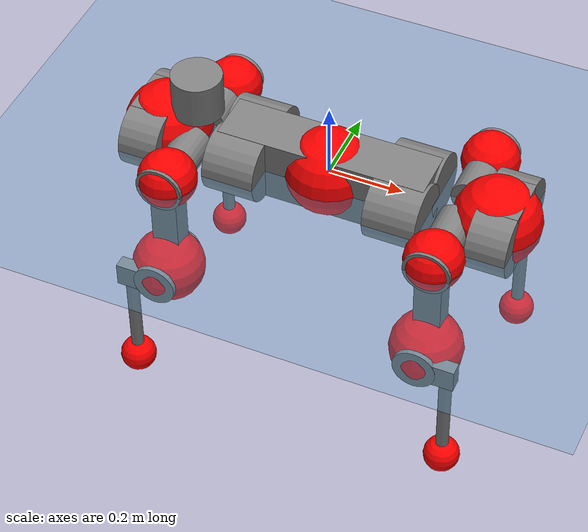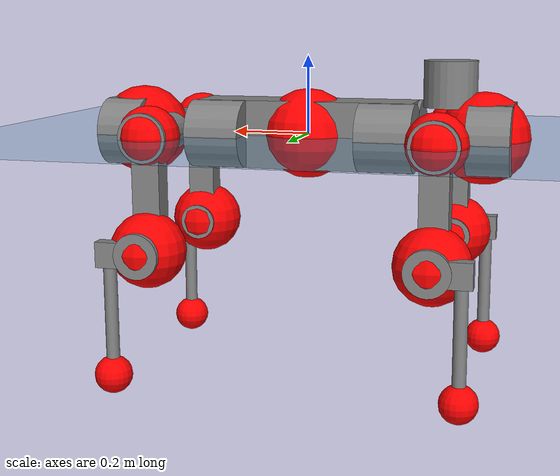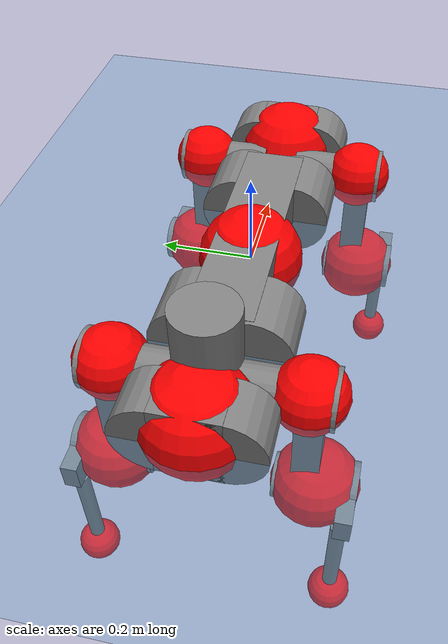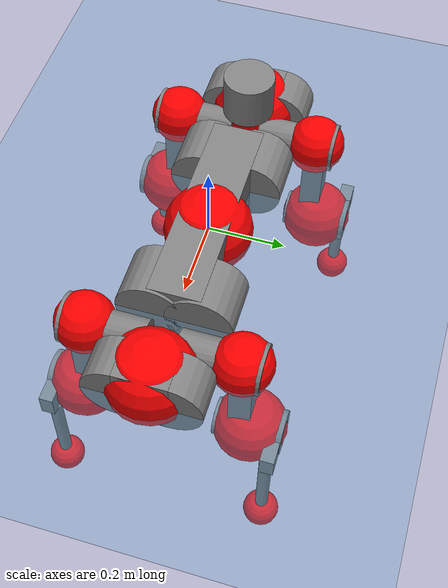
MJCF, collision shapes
<mujoco model="anymal_c">
  <compiler angle="radian" assetdir="assets" balanceinertia="true" inertiafromgeom="false"/>

  <option timestep="0.005" density="1.2" viscosity="2e-05"/>

  <size nkey="1"/>

  <visual>
    <quality shadowsize="8192"/>
    <map shadowclip="0.5"/>
  </visual>

  <default>
    <default class="/">
      <material specular="0" shininess="0.25"/>
      <geom contype="0" conaffinity="0" group="1" solref="-1000 -80"/>
      <site size="0.01 0.005 0.005" group="5"/>
      <general forcelimited="true" forcerange="-80 80" biastype="affine" gainprm="80" biasprm="0 -80 -2"/>
      <default class="anymal_c">
        <joint armature="0.01" damping="0.01" frictionloss="0.1"/>
        <default class="visual">
          <geom type="mesh" group="2"/>
          <default class="visual_zflip"/>
        </default>
        <default class="collision">
          <geom type="cylinder" group="3"/>
          <default class="foot">
            <geom size="0.03 0 0" type="sphere" condim="6" priority="1" friction="0.8 0.02 0.01" solimp="0.015 1 0.03"/>
          </default>
        </default>
      </default>
      <default class="reward_collision_sphere">
        <geom group="5" rgba="1 0 0 1"/>
      </default>
    </default>
  </default>

  <asset>
    <texture type="skybox" colorspace="auto" name="//unnamed_texture_0" builtin="gradient" rgb1="0.95 0.95 0.95" rgb2="0.95 0.95 0.95" width="100" height="600"/>
    <texture type="2d" colorspace="auto" name="texplane" builtin="checker" rgb1="0.345 0.575 0.748" rgb2="0.345 0.575 0.748" markrgb="1 1 1" width="512" height="512"/>
    <texture type="2d" colorspace="linear" name="base" file="base.png"/>
    <texture type="2d" colorspace="linear" name="top_shell" file="top_shell.png"/>
    <texture type="2d" colorspace="linear" name="bottom_shell" file="bottom_shell.png"/>
    <texture type="2d" colorspace="linear" name="remote" file="remote.png"/>
    <texture type="2d" colorspace="linear" name="hatch" file="hatch.png"/>
    <texture type="2d" colorspace="linear" name="handle" file="handle.png"/>
    <texture type="2d" colorspace="linear" name="face" file="face.png"/>
    <texture type="2d" colorspace="linear" name="battery" file="battery.png"/>
    <texture type="2d" colorspace="linear" name="lidar_cage" file="lidar_cage.png"/>
    <texture type="2d" colorspace="linear" name="depth_camera" file="depth_camera.png"/>
    <texture type="2d" colorspace="linear" name="wide_angle_camera" file="wide_angle_camera.png"/>
    <texture type="2d" colorspace="linear" name="lidar" file="lidar.png"/>
    <texture type="2d" colorspace="linear" name="drive" file="drive.png"/>
    <texture type="2d" colorspace="linear" name="hip_l" file="hip_l.png"/>
    <texture type="2d" colorspace="linear" name="shank_l" file="shank_l.png"/>
    <texture type="2d" colorspace="linear" name="foot" file="foot.png"/>
    <texture type="2d" colorspace="linear" name="thigh" file="thigh.png"/>
    <texture type="2d" colorspace="linear" name="shank_r" file="shank_r.png"/>
    <texture type="2d" colorspace="linear" name="hip_r" file="hip_r.png"/>
    <material name="MatPlane" class="/" texture="texplane" texuniform="true" texrepeat="2 2" specular="0.9" shininess="0.5"/>
    <material name="black_plastic" class="/" rgba="0.007 0.007 0.007 1"/>
    <material name="green" class="/" rgba="0.052 0.178 0.033 1"/>
    <material name="red" class="/" rgba="0.178 0.006 0.005 1"/>
    <material name="yellow" class="/" rgba="0.178 0.119 0.006 1"/>
    <material name="lwl" class="/" rgba="0.8 0.8 0.8 1"/>
    <material name="base" class="/" texture="base"/>
    <material name="top_shell" class="/" texture="top_shell"/>
    <material name="bottom_shell" class="/" texture="bottom_shell"/>
    <material name="hip_l" class="/" texture="hip_l"/>
    <material name="thigh" class="/" texture="thigh"/>
    <material name="shank_l" class="/" texture="shank_l"/>
    <material name="foot" class="/" texture="foot"/>
    <material name="hip_r" class="/" texture="hip_r"/>
    <material name="shank" class="/" texture="shank_r"/>
    <material name="hatch" class="/" texture="hatch"/>
    <material name="remote" class="/" texture="remote"/>
    <material name="handle" class="/" texture="handle"/>
    <material name="face" class="/" texture="face"/>
    <material name="depth_camera" class="/" texture="depth_camera"/>
    <material name="wide_angle_camera" class="/" texture="wide_angle_camera"/>
    <material name="battery" class="/" texture="battery"/>
    <material name="lidar_cage" class="/" texture="lidar_cage"/>
    <material name="lidar" class="/" texture="lidar"/>
    <material name="drive" class="/" texture="drive"/>
    <mesh name="base_0" class="/" file="base_0.obj"/>
    <mesh name="base_1" class="/" file="base_1.obj"/>
    <mesh name="base_2" class="/" file="base_2.obj"/>
    <mesh name="base_3" class="/" file="base_3.obj"/>
    <mesh name="base_4" class="/" file="base_4.obj"/>
    <mesh name="base_5" class="/" file="base_5.obj"/>
    <mesh name="top_shell" class="/" file="top_shell.obj"/>
    <mesh name="bottom_shell" class="/" file="bottom_shell.obj"/>
    <mesh name="remote" class="/" file="remote.obj"/>
    <mesh name="handle" class="/" file="handle.obj"/>
    <mesh name="face" class="/" file="face.obj"/>
    <mesh name="wide_angle_camera" class="/" file="wide_angle_camera.obj"/>
    <mesh name="depth_camera" class="/" file="depth_camera.obj"/>
    <mesh name="battery" class="/" file="battery.obj"/>
    <mesh name="lidar_cage" class="/" file="lidar_cage.obj"/>
    <mesh name="lidar" class="/" file="lidar.obj"/>
    <mesh name="drive" class="/" file="drive.obj"/>
    <mesh name="hip_l" class="/" file="hip_l.obj"/>
    <mesh name="thigh" class="/" file="thigh.obj"/>
    <mesh name="shank_l" class="/" file="shank_l.obj"/>
    <mesh name="foot" class="/" file="foot.obj"/>
    <mesh name="hip_r" class="/" file="hip_r.obj"/>
    <mesh name="hatch" class="/" file="hatch.obj"/>
    <mesh name="shank_r" class="/" file="shank_r.obj"/>
  </asset>

  <worldbody>
    <geom name="floor" class="/" size="100 100 0.125" type="plane" group="0" material="MatPlane"/>
    <light name="toplight_shadow" class="/" pos="0 0 5" dir="0.0990148 0.0990148 -0.990148" type="directional" ambient="0.04 0.04 0.04" diffuse="0.55 0.55 0.55" specular="0.12 0.12 0.12"/>
    <light name="toplight_fill" class="/" pos="0 0 5" dir="0.0990148 0.0990148 -0.990148" type="directional" castshadow="false" ambient="0.04 0.04 0.04" diffuse="0.3 0.3 0.3" specular="0.08 0.08 0.08"/>
    <body name="trunk" childclass="anymal_c" pos="0.000221062 0.000527224 0.000953816" quat="1 2.59826e-05 0.00014508 -0.000263113">
      <inertial pos="0.00326919 -0.000919756 0.0493656" quat="0.501973 0.49952 0.499852 0.498649" mass="17.3657" diaginertia="0.679051 0.354965 0.224605"/>
      <joint name="//unnamed_joint_0" type="free" armature="0" damping="0" frictionloss="0"/>
      <geom name="//unnamed_geom_1" class="visual" material="green" mesh="base_0"/>
      <geom name="//unnamed_geom_2" class="visual" material="yellow" mesh="base_1"/>
      <geom name="//unnamed_geom_3" class="visual" material="red" mesh="base_2"/>
      <geom name="//unnamed_geom_4" class="visual" material="black_plastic" mesh="base_3"/>
      <geom name="//unnamed_geom_5" class="visual" material="lwl" mesh="base_4"/>
      <geom name="//unnamed_geom_6" class="visual" material="base" mesh="base_5"/>
      <geom name="trunk_1" class="collision" size="0.280121 0.0676154 0.0869341" type="box"/>
      <geom name="trunk_2" class="collision" size="0.0869341 0.0700303" pos="0.218946 0.0623426 0" quat="0.707107 0 0.707107 0"/>
      <geom name="trunk_3" class="collision" size="0.0869341 0.0700303" pos="-0.218946 0.0623426 0" quat="0.707107 0 0.707107 0"/>
      <geom name="trunk_4" class="collision" size="0.0869341 0.0700303" pos="0.218946 -0.0623426 0" quat="0.707107 0 0.707107 0"/>
      <geom name="trunk_5" class="collision" size="0.0869341 0.0700303" pos="-0.218946 -0.0623426 0" quat="0.707107 0 0.707107 0"/>
      <geom name="//unnamed_geom_12" class="visual" material="top_shell" mesh="top_shell"/>
      <geom name="//unnamed_geom_13" class="visual" material="bottom_shell" mesh="bottom_shell"/>
      <geom name="//unnamed_geom_14" class="visual" material="remote" mesh="remote"/>
      <geom name="//unnamed_geom_15" class="visual" material="handle" mesh="handle"/>
      <geom name="//unnamed_geom_16" class="visual" pos="0.417256 0 0" quat="1 0 0 0" material="face" mesh="face"/>
      <geom name="trunk_6" class="collision" size="0.0531264 0.0676154 0.0869341" pos="0.472622 0 0" type="box"/>
      <geom name="//unnamed_geom_18" class="collision" size="0.0869341 0.0531264" pos="0.472622 0.0623426 0" quat="0.707107 0 0.707107 0"/>
      <geom name="//unnamed_geom_19" class="collision" size="0.0869341 0.0531264" pos="0.472622 -0.0623426 0" quat="0.707107 0 0.707107 0"/>
      <geom name="//unnamed_geom_20" class="visual" pos="0.46472 0 -0.0291695" quat="0.965926 0 0.258819 0" material="depth_camera" mesh="depth_camera"/>
      <geom name="//unnamed_geom_21" class="visual" pos="0.516411 0 0.0149782" material="wide_angle_camera" mesh="wide_angle_camera"/>
      <geom name="//unnamed_geom_22" class="visual_zflip" pos="-0.417256 0 0" quat="0 0 0 1" material="face" mesh="face"/>
      <geom name="trunk_7" class="collision" size="0.0531264 0.0676154 0.0869341" pos="-0.472622 0 0" quat="0 0 0 1" type="box"/>
      <geom name="//unnamed_geom_24" class="collision" size="0.0869341 0.0531264" pos="-0.472622 -0.0623426 0" quat="0 -0.707107 0 0.707107"/>
      <geom name="//unnamed_geom_25" class="collision" size="0.0869341 0.0531264" pos="-0.472622 0.0623426 0" quat="0 -0.707107 0 0.707107"/>
      <geom name="//unnamed_geom_26" class="visual" pos="-0.46472 0 -0.0291695" quat="0 -0.258819 0 0.965926" material="depth_camera" mesh="depth_camera"/>
      <geom name="//unnamed_geom_27" class="visual_zflip" pos="-0.516411 0 0.0149782" quat="0 0 0 1" material="wide_angle_camera" mesh="wide_angle_camera"/>
      <geom name="//unnamed_geom_28" class="visual" material="battery" mesh="battery"/>
      <geom name="//unnamed_geom_29" class="visual" pos="0 0.066573 0.0291122" quat="0.683013 -0.183013 0.183013 0.683013" material="depth_camera" mesh="depth_camera"/>
      <geom name="//unnamed_geom_30" class="visual" pos="0 -0.066573 0.0291122" quat="0.683013 0.183013 0.183013 -0.683013" material="depth_camera" mesh="depth_camera"/>
      <geom name="//unnamed_geom_31" class="visual" pos="-0.36642 0 0.0735401" quat="1 0 0 0" material="lidar_cage" mesh="lidar_cage"/>
      <geom name="trunk_8" class="collision" size="0.0676154 0.0579561" pos="-0.36642 0 0.133573"/>
      <geom name="//unnamed_geom_33" class="visual" pos="-0.36642 -4.55893e-05 0.142278" quat="0.707107 0 0 -0.707107" material="lidar" mesh="lidar"/>
      <geom name="//unnamed_geom_34" class="visual" pos="0.301894 0.0926624 -1.89642e-09" quat="0.258819 0.965926 0 0" material="drive" mesh="drive"/>
      <geom name="//unnamed_geom_35" class="visual" pos="0.301894 -0.0926624 1.89642e-09" quat="0.258819 -0.965926 0 0" material="drive" mesh="drive"/>
      <geom name="//unnamed_geom_36" class="visual" pos="-0.301894 0.0926624 1.89642e-09" quat="0 0 0.965926 -0.258819" material="drive" mesh="drive"/>
      <geom name="//unnamed_geom_37" class="visual" pos="-0.301894 -0.0926624 -1.89642e-09" quat="0 0 -0.965926 -0.258819" material="drive" mesh="drive"/>
      <geom name="//unnamed_geom_38" class="visual" pos="0.116771 0 0.0730398" quat="1 0 0 0" material="hatch" mesh="hatch"/>
      <geom name="//unnamed_geom_39" class="reward_collision_sphere" size="0.115912"/>
      <geom name="//unnamed_geom_40" class="reward_collision_sphere" size="0.115912" pos="0.452992 0 0"/>
      <geom name="//unnamed_geom_41" class="reward_collision_sphere" size="0.115912" pos="-0.452992 0 0"/>
      <site name="imu" pos="0.246137 -0.00175918 0.0501016" size="0.00965935"/>
      <camera name="track" pos="0 -1.78122 0" quat="0.707107 0.707107 0 0" mode="trackcom"/>
      <camera name="ego_camera" pos="0.452992 0 -0.0400218" quat="-0.5 -0.5 0.5 0.5"/>
      <body name="LF_HIP" pos="0.302087 0.0924782 0.000828477" quat="0.259547 0.96573 0.000277726 0.000260011">
        <inertial pos="0.0580348 -0.0132355 -0.0079307" quat="-0.127486 0.709814 -0.134899 0.679495" mass="2.54424" diaginertia="0.00614918 0.00280473 0.00331212"/>
        <joint name="LF_HAA" pos="0 0 0" axis="0.999999 -0.00135055 5.61486e-05" range="-0.696092 0.486933" armature="0.00967779" damping="0.0121257" frictionloss="0.0940833"/>
        <geom name="//unnamed_geom_42" class="visual" pos="0 -0.000111558 1.83233e-05" quat="0.258819 -0.965926 0 0" material="hip_l" mesh="hip_l"/>
        <geom name="//unnamed_geom_43" class="visual" pos="0.0602983 -0.0715754 -0.0421373" quat="0.183013 -0.683013 0.683013 0.183013" material="drive" mesh="drive"/>
        <geom name="//unnamed_geom_44" class="collision" size="0.0482967 0.0676154" pos="0.0602983 -0.0106515 -0.00690877" quat="-0.353553 -0.612372 0.612372 -0.353553"/>
        <body name="LF_THIGH" pos="0.0607255 -0.0652493 -0.0403706" quat="0.183111 -0.682989 0.682998 0.183058">
          <inertial pos="0.0315182 -0.00112036 -0.247617" quat="0.993031 -0.00474797 -0.0805088 0.0859387" mass="2.74524" diaginertia="0.0313616 0.0168891 0.0042029"/>
          <joint name="LF_HFE" pos="0 0 0" axis="0.999999 -0.00163101 0.000292667" range="-3.145 3.17095" armature="0.0100343" damping="0" frictionloss="0.0968372"/>
          <geom name="//unnamed_geom_45" class="visual" pos="0.00230876 3.63806e-06 0" quat="0.707107 0 0 -0.707107" material="thigh" mesh="thigh"/>
          <geom name="//unnamed_geom_46" class="collision" size="0.0627858 0.0386374" pos="0.040266 0 0" quat="0.5 0.5 -0.5 -0.5"/>
          <geom name="//unnamed_geom_47" class="collision" size="0.0362226 0.028978 0.1365" pos="0.0301995 0 -0.141391" quat="0.707107 0 0 -0.707107" type="box"/>
          <geom name="//unnamed_geom_48" class="visual" pos="0.100967 0 -0.285156" quat="1 0 0 0" material="drive" mesh="drive"/>
          <geom name="//unnamed_geom_49" class="collision" size="0.0482967 0.0676154" pos="0.0305015 0 -0.285156" quat="0.707107 0 0.707107 0"/>
          <geom name="//unnamed_geom_50" class="reward_collision_sphere" size="0.0772748" pos="0.0251662 0 0"/>
          <body name="LF_SHANK" pos="0.10289 0.00115229 -0.285356" quat="1 -3.39871e-06 1.49299e-06 1.80747e-05">
            <inertial pos="0.0057685 -0.0536733 -0.0811249" quat="0.992924 -0.116102 -0.00110128 -0.0249083" mass="0.536533" diaginertia="0.0104328 0.00515717 0.00111738"/>
            <joint name="LF_KFE" pos="0 0 0" axis="1 -5.86893e-05 -3.82369e-05" range="-3.15008 3.12206" armature="0.00957043" damping="0.00984399" frictionloss="0.0941358"/>
            <geom name="//unnamed_geom_51" class="visual" pos="0.000752835 0.00401415 0" quat="0.707107 0 0 -0.707107" material="shank_l" mesh="shank_l"/>
            <geom name="LF_kfe_act" class="collision" size="0.0579561 0.0193187" pos="0.020133 0 0" quat="0.5 0.5 -0.5 -0.5"/>
            <geom name="//unnamed_geom_53" class="collision" size="0.0555403 0.0326003 0.0183528" pos="0.020133 -0.0512091 0" quat="0.5 0.5 -0.5 -0.5" type="box"/>
            <geom name="//unnamed_geom_54" class="visual" pos="0.0131366 -0.0770354 -0.338154" quat="0.382683 0 0 -0.92388" material="foot" mesh="foot"/>
            <geom name="LF_calf" class="collision" size="0.0169039 0.13644" pos="0.0131368 -0.078329 -0.169077" quat="0.707107 0 0 -0.707107"/>
            <geom name="LF_foot" class="foot" size="0.0281566" pos="0.0131368 -0.078329 -0.315642" quat="0.707107 0 0 -0.707107"/>
            <geom name="//unnamed_geom_57" class="reward_collision_sphere" size="0.0965935" pos="-0.0503325 0 0"/>
            <geom name="//unnamed_geom_58" class="reward_collision_sphere" size="0.0482967" pos="0.0131368 -0.078329 -0.315642"/>
            <site name="LF_foot" class="foot" pos="0.0131368 -0.078329 -0.315642" quat="0.707107 0 0 -0.707107" size="0.00965935"/>
          </body>
        </body>
      </body>
      <body name="RF_HIP" pos="0.301528 -0.0942877 0.00140156" quat="0.258818 -0.965926 -4.49589e-06 1.56099e-06">
        <inertial pos="0.0572751 0.0145205 -0.00858914" quat="0.1294 0.67929 0.126866 0.711144" mass="2.55055" diaginertia="0.00623256 0.00277211 0.00337296"/>
        <joint name="RF_HAA" pos="0 0 0" axis="0.999998 -0.000373816 0.00215413" range="-0.4954 0.71899" armature="0.00960571" damping="0.00957267" frictionloss="0.0934669"/>
        <geom name="//unnamed_geom_59" class="visual" pos="0 0.000111557 1.83233e-05" quat="0.258819 0.965926 0 0" material="hip_r" mesh="hip_r"/>
        <geom name="//unnamed_geom_60" class="visual" pos="0.0602983 0.0715754 -0.0421373" quat="0.183013 0.683013 0.683013 -0.183013" material="drive" mesh="drive"/>
        <geom name="//unnamed_geom_61" class="collision" size="0.0482967 0.0676154" pos="0.0602983 0.0106515 -0.00690877" quat="-0.353553 0.612372 0.612372 0.353553"/>
        <body name="RF_THIGH" pos="0.0596828 0.0641901 -0.0423342" quat="0.182999 0.683061 0.682959 -0.183048">
          <inertial pos="0.0312758 -5.19433e-05 -0.246994" quat="0.992529 -0.0140969 -0.0837495 0.0875941" mass="2.79659" diaginertia="0.0321586 0.0170366 0.00426894"/>
          <joint name="RF_HFE" pos="0 0 0" axis="0.999998 0.00172683 0.000511527" stiffness="0.00501402" range="-3.16913 3.14558" armature="0.0095413" damping="0.00928487" frictionloss="0.0972663"/>
          <geom name="//unnamed_geom_62" class="visual" pos="0.00230876 3.63806e-06 0" quat="0.707107 0 0 -0.707107" material="thigh" mesh="thigh"/>
          <geom name="//unnamed_geom_63" class="collision" size="0.0627858 0.0386374" pos="0.040266 0 0" quat="0.5 0.5 0.5 0.5"/>
          <geom name="//unnamed_geom_64" class="collision" size="0.0362226 0.028978 0.1365" pos="0.0301995 0 -0.141391" quat="0.707107 0 0 0.707107" type="box"/>
          <geom name="//unnamed_geom_65" class="visual" pos="0.100967 0 -0.285156" quat="1 0 0 0" material="drive" mesh="drive"/>
          <geom name="//unnamed_geom_66" class="collision" size="0.0482967 0.0676154" pos="0.0305015 0 -0.285156" quat="0.707107 0 0.707107 0"/>
          <geom name="//unnamed_geom_67" class="reward_collision_sphere" size="0.0772748" pos="0.0251662 0 0"/>
          <body name="RF_SHANK" pos="0.10058 0.00071664 -0.285067" quat="1 -5.14379e-06 9.35494e-06 1.37317e-05">
            <inertial pos="0.00589648 0.054257 -0.0785698" quat="0.992401 0.120015 -0.00127088 0.0270942" mass="0.516652" diaginertia="0.0101348 0.00516437 0.00108076"/>
            <joint name="RF_KFE" pos="0 0 0" axis="0.999999 -0.00107036 0.000886252" stiffness="0.00042972" range="-3.13113 3.15508" armature="0.00961965" damping="0.00826029" frictionloss="0.0968469"/>
            <geom name="//unnamed_geom_68" class="visual" pos="0.000752831 -0.00401415 0" quat="0.707107 0 0 0.707107" material="shank" mesh="shank_r"/>
            <geom name="RF_kfe_act" class="collision" size="0.0579561 0.0193187" pos="0.020133 0 0" quat="0.5 0.5 0.5 0.5"/>
            <geom name="//unnamed_geom_70" class="collision" size="0.0555403 0.0326003 0.0183528" pos="0.020133 0.0512091 0" quat="0.5 0.5 0.5 0.5" type="box"/>
            <geom name="//unnamed_geom_71" class="visual" pos="0.013137 0.0770354 -0.338154" quat="0.382683 0 0 0.92388" material="foot" mesh="foot"/>
            <geom name="RF_calf" class="collision" size="0.0169039 0.13644" pos="0.0131368 0.078329 -0.169077" quat="0.707107 0 0 0.707107"/>
            <geom name="RF_foot" class="foot" size="0.0288013" pos="0.0131368 0.078329 -0.315642" quat="0.707107 0 0 0.707107"/>
            <geom name="//unnamed_geom_74" class="reward_collision_sphere" size="0.0965935" pos="-0.0503325 0 0"/>
            <geom name="//unnamed_geom_75" class="reward_collision_sphere" size="0.0482967" pos="0.0131368 0.078329 -0.315642"/>
            <site name="RF_foot" class="foot" pos="0.0131368 0.078329 -0.315642" quat="0.707107 0 0 0.707107" size="0.00965935"/>
          </body>
        </body>
      </body>
      <body name="LH_HIP" pos="-0.30192 0.0936435 -0.000587753" quat="-6.71559e-05 -0.000127289 0.965917 -0.258851">
        <inertial pos="0.0572128 0.0131546 -0.00944382" quat="0.134668 0.678882 0.125541 0.710791" mass="2.52424" diaginertia="0.00607391 0.0027545 0.00328588"/>
        <joint name="LH_HAA" pos="0 0 0" axis="0.999999 0.000870393 -0.00055221" range="-0.460529 0.74435" armature="0.00962982" damping="0.0119426" frictionloss="0.10164"/>
        <geom name="//unnamed_geom_76" class="visual" pos="0 0.000111557 1.83233e-05" quat="-0.258819 -0.965926 0 0" material="hip_r" mesh="hip_r"/>
        <geom name="//unnamed_geom_77" class="visual" pos="0.0602983 0.0715754 -0.0421373" quat="0.183013 0.683013 0.683013 -0.183013" material="drive" mesh="drive"/>
        <geom name="//unnamed_geom_78" class="collision" size="0.0482967 0.0676154" pos="0.0602983 0.0106515 -0.00690877" quat="-0.353553 0.612372 0.612372 0.353553"/>
        <body name="LH_THIGH" pos="0.0594715 0.0643922 -0.0419129" quat="0.183051 0.683068 0.682947 -0.183014">
          <inertial pos="0.0302007 0.000424308 -0.247411" quat="0.992187 -0.0053717 -0.0832498 0.0927666" mass="2.72175" diaginertia="0.0303896 0.016488 0.00408953"/>
          <joint name="LH_HFE" pos="0 0 0" axis="0.999985 -0.00542994 -0.000755855" stiffness="0.00303336" range="-3.16319 3.13525" armature="0.00927576" damping="0.00546222" frictionloss="0.0973611"/>
          <geom name="//unnamed_geom_79" class="visual" pos="0.00230876 3.63806e-06 0" quat="0.707107 0 0 -0.707107" material="thigh" mesh="thigh"/>
          <geom name="//unnamed_geom_80" class="collision" size="0.0627858 0.0386374" pos="0.040266 0 0" quat="0.5 0.5 -0.5 -0.5"/>
          <geom name="//unnamed_geom_81" class="collision" size="0.0362226 0.028978 0.1365" pos="0.0301995 0 -0.141391" quat="0.707107 0 0 -0.707107" type="box"/>
          <geom name="//unnamed_geom_82" class="visual" pos="0.100967 0 -0.285156" quat="1 0 0 0" material="drive" mesh="drive"/>
          <geom name="//unnamed_geom_83" class="collision" size="0.0482967 0.0676154" pos="0.0305015 0 -0.285156" quat="0.707107 0 0.707107 0"/>
          <geom name="//unnamed_geom_84" class="reward_collision_sphere" size="0.0772748" pos="0.0251662 0 0"/>
          <body name="LH_SHANK" pos="0.101601 -0.00149898 -0.285582" quat="1 1.13832e-05 -0.000141578 0.000181883">
            <inertial pos="0.00465595 0.0551788 -0.0811536" quat="0.993106 0.114537 -0.000524987 0.0249301" mass="0.531519" diaginertia="0.0105284 0.00512874 0.00113427"/>
            <joint name="LH_KFE" pos="0 0 0" axis="1 -5.97331e-05 -0.000119798" range="-3.1542 3.14144" armature="0.00999565" damping="0.0116863" frictionloss="0.0928128"/>
            <geom name="//unnamed_geom_85" class="visual" pos="0.000752831 -0.00401415 0" quat="-0.707107 0 0 -0.707107" material="shank" mesh="shank_r"/>
            <geom name="LH_kfe_act" class="collision" size="0.0579561 0.0193187" pos="0.020133 0 0" quat="0.5 0.5 -0.5 -0.5"/>
            <geom name="//unnamed_geom_87" class="collision" size="0.0555403 0.0326003 0.0183528" pos="0.020133 0.0512091 0" quat="0.5 0.5 -0.5 -0.5" type="box"/>
            <geom name="//unnamed_geom_88" class="visual" pos="0.013137 0.0770354 -0.338154" quat="-0.382683 0 0 -0.92388" material="foot" mesh="foot"/>
            <geom name="LH_calf" class="collision" size="0.0169039 0.13644" pos="0.0131368 0.078329 -0.169077" quat="0.707107 0 0 -0.707107"/>
            <geom name="LH_foot" class="foot" size="0.031024" pos="0.0131368 0.078329 -0.315642" quat="0.707107 0 0 -0.707107"/>
            <geom name="//unnamed_geom_91" class="reward_collision_sphere" size="0.0965935" pos="-0.0503325 0 0"/>
            <geom name="//unnamed_geom_92" class="reward_collision_sphere" size="0.0482967" pos="0.0131368 0.078329 -0.315642"/>
            <site name="LH_foot" class="foot" pos="0.0131368 0.078329 -0.315642" quat="0.707107 0 0 -0.707107" size="0.00965935"/>
          </body>
        </body>
      </body>
      <body name="RH_HIP" pos="-0.301842 -0.091485 -3.90498e-05" quat="7.09305e-05 -0.000128528 -0.966035 -0.258412">
        <inertial pos="0.0568044 -0.012811 -0.00831296" quat="-0.127776 0.709621 -0.135305 0.679562" mass="2.42479" diaginertia="0.00589485 0.00268743 0.00323617"/>
        <joint name="RH_HAA" pos="0 0 0" axis="0.999996 -0.0023363 0.00187368" range="-0.73683 0.485733" armature="0.0100759" damping="0.00574069" frictionloss="0.0929977"/>
        <geom name="//unnamed_geom_93" class="visual" pos="0 -0.000111558 1.83233e-05" quat="-0.258819 0.965926 0 0" material="hip_l" mesh="hip_l"/>
        <geom name="//unnamed_geom_94" class="visual" pos="0.0602983 -0.0715754 -0.0421373" quat="-0.183013 0.683013 -0.683013 -0.183013" material="drive" mesh="drive"/>
        <geom name="//unnamed_geom_95" class="collision" size="0.0482967 0.0676154" pos="0.0602983 -0.0106515 -0.00690877" quat="0.353553 0.612372 -0.612372 0.353553"/>
        <body name="RH_THIGH" pos="0.0603582 -0.0645323 -0.0408826" quat="-0.182991 0.683017 -0.683031 -0.182951">
          <inertial pos="0.0319891 -0.000300175 -0.245561" quat="0.993128 -0.00549789 -0.080766 0.084513" mass="2.73739" diaginertia="0.0307131 0.0165845 0.00419148"/>
          <joint name="RH_HFE" pos="0 0 0" axis="0.999981 -2.8921e-05 0.00619306" range="-3.16667 3.16573" armature="0.00948218" damping="0.00755175" frictionloss="0.0942494"/>
          <geom name="//unnamed_geom_96" class="visual" pos="0.00230876 3.63806e-06 0" quat="0.707107 0 0 -0.707107" material="thigh" mesh="thigh"/>
          <geom name="//unnamed_geom_97" class="collision" size="0.0627858 0.0386374" pos="0.040266 0 0" quat="0.5 0.5 0.5 0.5"/>
          <geom name="//unnamed_geom_98" class="collision" size="0.0362226 0.028978 0.1365" pos="0.0301995 0 -0.141391" quat="0.707107 0 0 0.707107" type="box"/>
          <geom name="//unnamed_geom_99" class="visual" pos="0.100967 0 -0.285156" quat="1 0 0 0" material="drive" mesh="drive"/>
          <geom name="//unnamed_geom_100" class="collision" size="0.0482967 0.0676154" pos="0.0305015 0 -0.285156" quat="0.707107 0 0.707107 0"/>
          <geom name="//unnamed_geom_101" class="reward_collision_sphere" size="0.0772748" pos="0.0251662 0 0"/>
          <body name="RH_SHANK" pos="0.101842 0.000414572 -0.285697" quat="1 3.28304e-05 0.000132579 4.01452e-05">
            <inertial pos="0.00484598 -0.0544637 -0.0808102" quat="0.992945 -0.115367 -0.00282505 -0.027239" mass="0.533188" diaginertia="0.010537 0.0051892 0.00112831"/>
            <joint name="RH_KFE" pos="0 0 0" axis="0.999952 0.00808107 0.00561331" range="-3.13047 3.12005" armature="0.0100894" damping="0" frictionloss="0.0973639"/>
            <geom name="//unnamed_geom_102" class="visual" pos="0.000752835 0.00401415 0" quat="0.707107 0 0 -0.707107" material="shank_l" mesh="shank_l"/>
            <geom name="RH_kfe_act" class="collision" size="0.0579561 0.0193187" pos="0.020133 0 0" quat="0.5 0.5 0.5 0.5"/>
            <geom name="//unnamed_geom_104" class="collision" size="0.0555403 0.0326003 0.0183528" pos="0.020133 -0.0512091 0" quat="0.5 0.5 0.5 0.5" type="box"/>
            <geom name="//unnamed_geom_105" class="visual" pos="0.0131366 -0.0770354 -0.338154" quat="0.382683 0 0 -0.92388" material="foot" mesh="foot"/>
            <geom name="RH_calf" class="collision" size="0.0169039 0.13644" pos="0.0131368 -0.078329 -0.169077" quat="0.707107 0 0 0.707107"/>
            <geom name="RH_foot" class="foot" size="0.0291369" pos="0.0131368 -0.078329 -0.315642" quat="0.707107 0 0 0.707107"/>
            <geom name="//unnamed_geom_108" class="reward_collision_sphere" size="0.0965935" pos="-0.0503325 0 0"/>
            <geom name="//unnamed_geom_109" class="reward_collision_sphere" size="0.0482967" pos="0.0131368 -0.078329 -0.315642"/>
            <site name="RH_foot" class="foot" pos="0.0131368 -0.078329 -0.315642" quat="0.707107 0 0 0.707107" size="0.00965935"/>
          </body>
        </body>
      </body>
    </body>
  </worldbody>

  <contact>
    <pair class="/" geom1="floor" geom2="LF_foot" name="//unnamed_contact_0"/>
    <pair class="/" geom1="floor" geom2="RF_foot" name="//unnamed_contact_1"/>
    <pair class="/" geom1="floor" geom2="LH_foot" name="//unnamed_contact_2"/>
    <pair class="/" geom1="floor" geom2="RH_foot" name="//unnamed_contact_3"/>
  </contact>

  <actuator>
    <general name="LF_HAA" class="/" joint="LF_HAA" forcerange="-77.5283 77.5283" gainprm="79.878" biasprm="0 -79.878 -2.00499"/>
    <general name="LF_HFE" class="/" joint="LF_HFE" forcerange="-79.774 79.774" gainprm="79.878" biasprm="0 -79.878 -2.00499"/>
    <general name="LF_KFE" class="/" joint="LF_KFE" forcerange="-75.3059 75.3059" gainprm="79.878" biasprm="0 -79.878 -2.00499"/>
    <general name="RF_HAA" class="/" joint="RF_HAA" forcerange="-79.5334 79.5334" gainprm="79.878" biasprm="0 -79.878 -2.00499"/>
    <general name="RF_HFE" class="/" joint="RF_HFE" forcerange="-77.1107 77.1107" gainprm="79.878" biasprm="0 -79.878 -2.00499"/>
    <general name="RF_KFE" class="/" joint="RF_KFE" forcerange="-83.1763 83.1763" gainprm="79.878" biasprm="0 -79.878 -2.00499"/>
    <general name="LH_HAA" class="/" joint="LH_HAA" forcerange="-81.628 81.628" gainprm="79.878" biasprm="0 -79.878 -2.00499"/>
    <general name="LH_HFE" class="/" joint="LH_HFE" forcerange="-74.9908 74.9908" gainprm="79.878" biasprm="0 -79.878 -2.00499"/>
    <general name="LH_KFE" class="/" joint="LH_KFE" forcerange="-79.959 79.959" gainprm="79.878" biasprm="0 -79.878 -2.00499"/>
    <general name="RH_HAA" class="/" joint="RH_HAA" forcerange="-77.5889 77.5889" gainprm="79.878" biasprm="0 -79.878 -2.00499"/>
    <general name="RH_HFE" class="/" joint="RH_HFE" forcerange="-72.7992 72.7992" gainprm="79.878" biasprm="0 -79.878 -2.00499"/>
    <general name="RH_KFE" class="/" joint="RH_KFE" forcerange="-76.4374 76.4374" gainprm="79.878" biasprm="0 -79.878 -2.00499"/>
  </actuator>

  <sensor>
    <gyro site="imu" name="imu_angular_velocity"/>
    <velocimeter site="imu" name="imu_linear_velocity"/>
    <framelinvel objtype="site" objname="LF_foot" name="LF_foot_global_linear_velocity"/>
    <framelinvel objtype="site" objname="RF_foot" name="RF_foot_global_linear_velocity"/>
    <framelinvel objtype="site" objname="LH_foot" name="LH_foot_global_linear_velocity"/>
    <framelinvel objtype="site" objname="RH_foot" name="RH_foot_global_linear_velocity"/>
  </sensor>

  <keyframe>
    <key name="home" qpos="0 0 0.55 1 0 0 0 0 0.4 -0.8 0 -0.4 0.8 0 -0.4 0.8 0 0.4 -0.8"/>
  </keyframe>
</mujoco>
